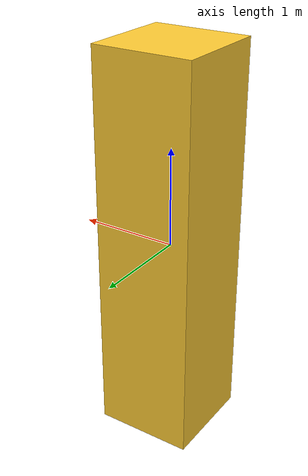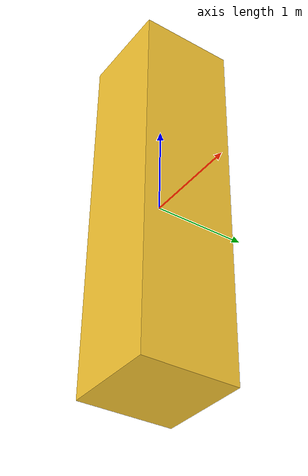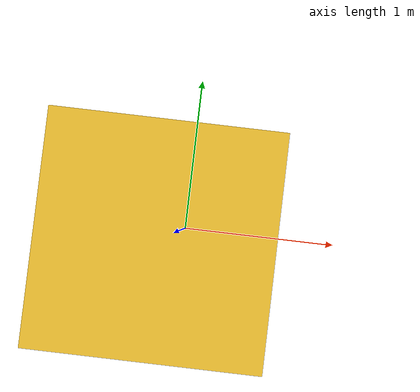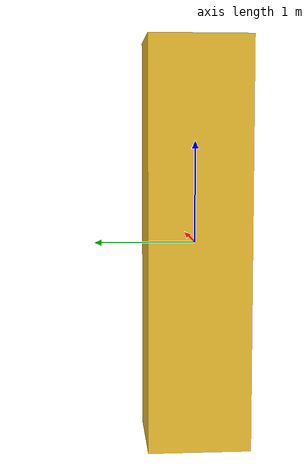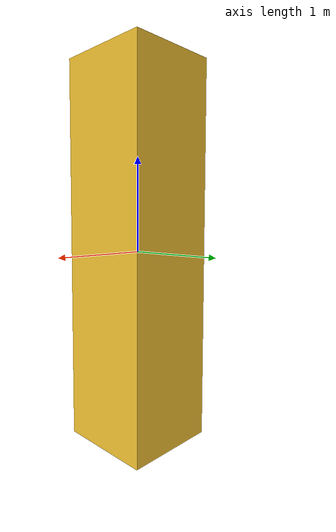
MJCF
<mujoco>
  <!-- Task guidance: Check the rocket's initial velocity, step the zero-gravity scene, then check velocity again. Base the answer on the measured change rather than assuming motion from the scene name. -->
  <option gravity="0 0 0" />
  <worldbody>
    <body name="object_1" pos="0 0 0">
      <geom type="box" size="0.5 0.5 2" density="1" rgba="1 0.8 0.2 1" />
      <joint name="object_1_joint" type="free" />
    </body>
  </worldbody>
</mujoco>
